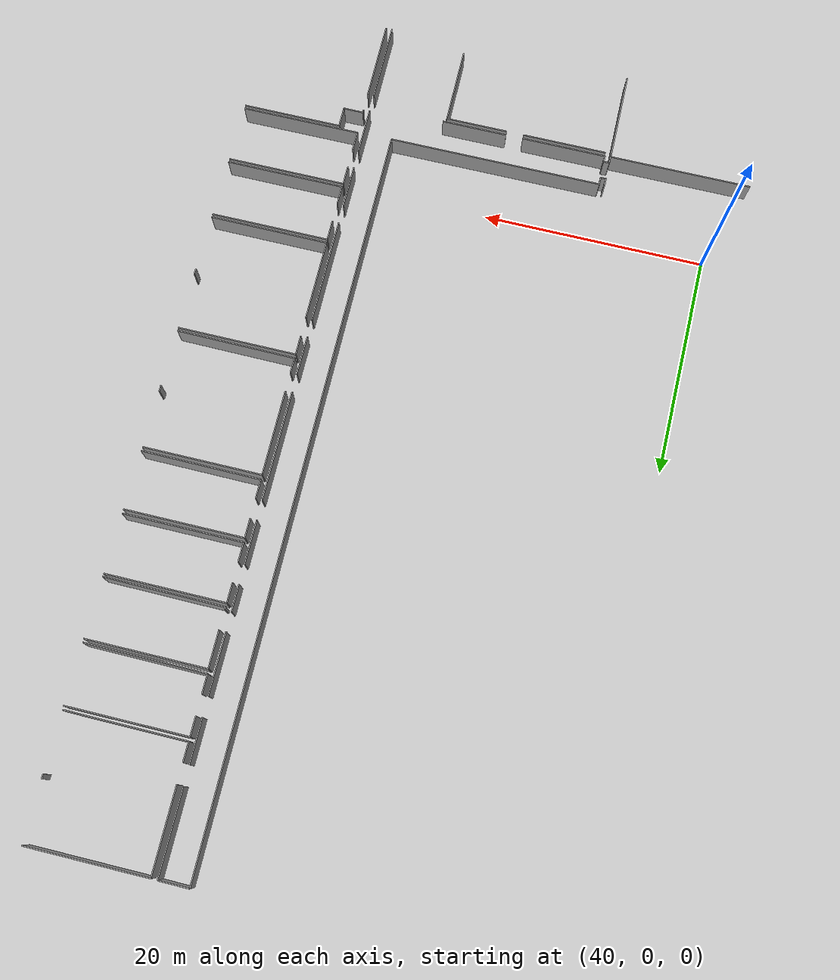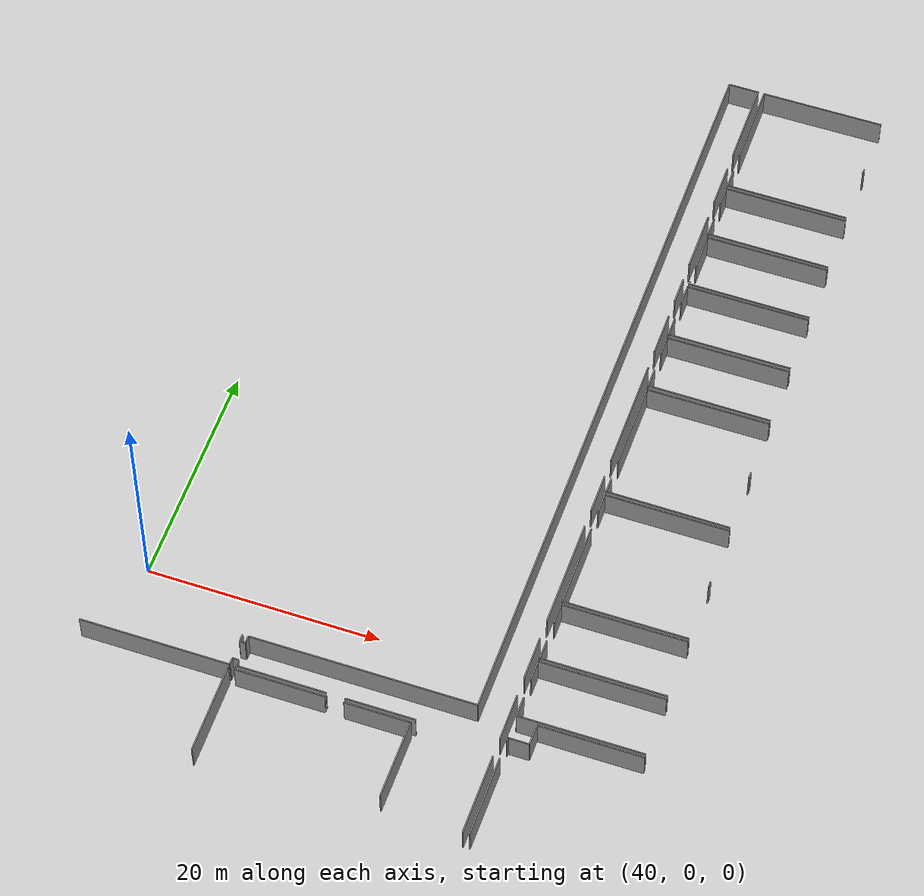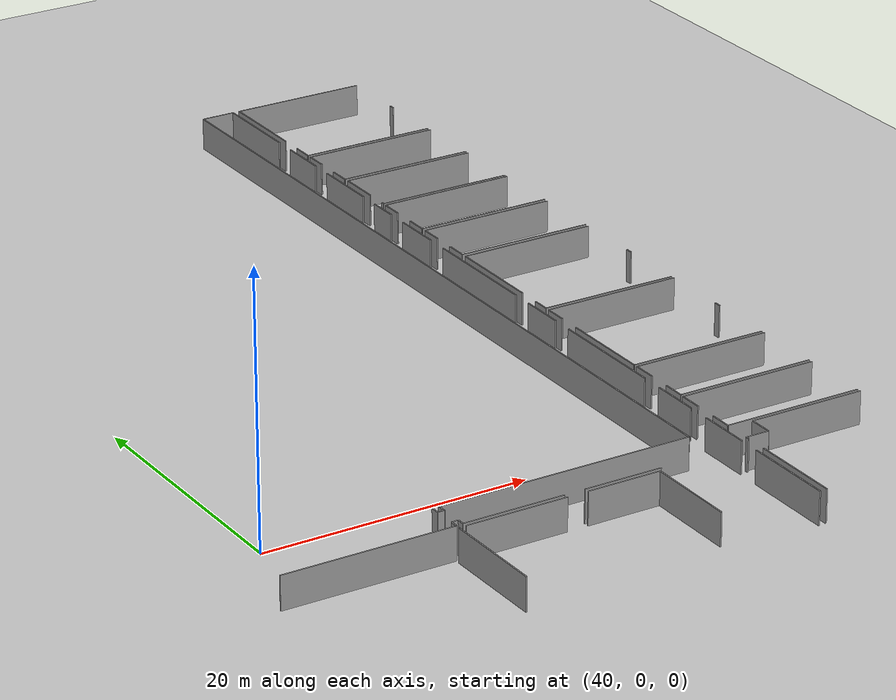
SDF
<sdf version="1.6">
 <world name="default">
  <model name="ground_plane">
   <static>1</static>
   <link name="link">
    <collision name="collision">
     <geometry><plane><normal>0 0 1</normal><size>100 100</size></plane></geometry>
     <surface><friction><ode><mu>100</mu><mu2>50</mu2></ode></friction></surface>
    </collision>
    <visual name="visual">
     <cast_shadows>0</cast_shadows>
     <geometry><plane><normal>0 0 1</normal><size>100 100</size></plane></geometry>
     <material>
      <script><uri>file://media/materials/scripts/gazebo.material</uri><name>Gazebo/Grey</name></script>
     </material>
    </visual>
   </link>
  </model>
  <model name="0510045905_A_40_1_103">
   <static>1</static>
   <link name="Wall_184">
    <collision name="Wall_184_Collision">
     <geometry><box><size>0.667246181862 0.1 2.5</size></box></geometry>
     <pose>0.333623090931 0 1.25 0 0 0</pose>
    </collision>
    <visual name="Wall_184_Visual">
     <pose>0.333623090931 0 1.25 0 0 0</pose>
     <geometry><box><size>0.667246181862 0.1 2.5</size></box></geometry>
     <material>
      <script><uri>file://media/materials/scripts/gazebo.material</uri><name>Gazebo/Grey</name></script>
      <ambient>1 1 1 1</ambient>
     </material>
    </visual>
    <pose>133.903034841 -66.9017721744 0 0 0 -1.57079632679</pose>
   </link>
   <link name="Wall_185">
    <collision name="Wall_185_Collision">
     <geometry><box><size>0.482731927692 0.1 2.5</size></box></geometry>
     <pose>0.241365963846 0 1.25 0 0 0</pose>
    </collision>
    <visual name="Wall_185_Visual">
     <pose>0.241365963846 0 1.25 0 0 0</pose>
     <geometry><box><size>0.482731927692 0.1 2.5</size></box></geometry>
     <material>
      <script><uri>file://media/materials/scripts/gazebo.material</uri><name>Gazebo/Grey</name></script>
      <ambient>1 1 1 1</ambient>
     </material>
    </visual>
    <pose>133.903034841 -67.5690183562 0 0 0 0.0</pose>
   </link>
   <link name="Wall_186">
    <collision name="Wall_186_Collision">
     <geometry><box><size>0.669276600065 0.1 2.5</size></box></geometry>
     <pose>0.334638300032 0 1.25 0 0 0</pose>
    </collision>
    <visual name="Wall_186_Visual">
     <pose>0.334638300032 0 1.25 0 0 0</pose>
     <geometry><box><size>0.669276600065 0.1 2.5</size></box></geometry>
     <material>
      <script><uri>file://media/materials/scripts/gazebo.material</uri><name>Gazebo/Grey</name></script>
      <ambient>1 1 1 1</ambient>
     </material>
    </visual>
    <pose>134.385766768 -67.5690183562 0 0 0 1.57079632679</pose>
   </link>
   <link name="Wall_187">
    <collision name="Wall_187_Collision">
     <geometry><box><size>19.3542001104 0.1 2.5</size></box></geometry>
     <pose>9.6771000552 0 1.25 0 0 0</pose>
    </collision>
    <visual name="Wall_187_Visual">
     <pose>9.6771000552 0 1.25 0 0 0</pose>
     <geometry><box><size>19.3542001104 0.1 2.5</size></box></geometry>
     <material>
      <script><uri>file://media/materials/scripts/gazebo.material</uri><name>Gazebo/Grey</name></script>
      <ambient>1 1 1 1</ambient>
     </material>
    </visual>
    <pose>134.385766768 -66.8997417562 0 0 0 0.0</pose>
   </link>
   <link name="Wall_188">
    <collision name="Wall_188_Collision">
     <geometry><box><size>66.8997417562 0.1 2.5</size></box></geometry>
     <pose>33.4498708781 0 1.25 0 0 0</pose>
    </collision>
    <visual name="Wall_188_Visual">
     <pose>33.4498708781 0 1.25 0 0 0</pose>
     <geometry><box><size>66.8997417562 0.1 2.5</size></box></geometry>
     <material>
      <script><uri>file://media/materials/scripts/gazebo.material</uri><name>Gazebo/Grey</name></script>
      <ambient>1 1 1 1</ambient>
     </material>
    </visual>
    <pose>153.739966879 -66.8997417562 0 0 0 1.57079632679</pose>
   </link>
   <link name="Wall_189">
    <collision name="Wall_189_Collision">
     <geometry><box><size>2.63497522255 0.1 2.5</size></box></geometry>
     <pose>1.31748761128 0 1.25 0 0 0</pose>
    </collision>
    <visual name="Wall_189_Visual">
     <pose>1.31748761128 0 1.25 0 0 0</pose>
     <geometry><box><size>2.63497522255 0.1 2.5</size></box></geometry>
     <material>
      <script><uri>file://media/materials/scripts/gazebo.material</uri><name>Gazebo/Grey</name></script>
      <ambient>1 1 1 1</ambient>
     </material>
    </visual>
    <pose>153.739966879 -0.0 0 0 0 0.0</pose>
   </link>
   <link name="Wall_190">
    <collision name="Wall_190_Collision">
     <geometry><box><size>7.36737244849 0.1 2.5</size></box></geometry>
     <pose>3.68368622425 0 1.25 0 0 0</pose>
    </collision>
    <visual name="Wall_190_Visual">
     <pose>3.68368622425 0 1.25 0 0 0</pose>
     <geometry><box><size>7.36737244849 0.1 2.5</size></box></geometry>
     <material>
      <script><uri>file://media/materials/scripts/gazebo.material</uri><name>Gazebo/Grey</name></script>
      <ambient>1 1 1 1</ambient>
     </material>
    </visual>
    <pose>156.374942101 -0.0 0 0 0 -1.57079632679</pose>
   </link>
   <link name="Wall_191">
    <collision name="Wall_191_Collision">
     <geometry><box><size>3.86210922381 0.1 2.5</size></box></geometry>
     <pose>1.9310546119 0 1.25 0 0 0</pose>
    </collision>
    <visual name="Wall_191_Visual">
     <pose>1.9310546119 0 1.25 0 0 0</pose>
     <geometry><box><size>3.86210922381 0.1 2.5</size></box></geometry>
     <material>
      <script><uri>file://media/materials/scripts/gazebo.material</uri><name>Gazebo/Grey</name></script>
      <ambient>1 1 1 1</ambient>
     </material>
    </visual>
    <pose>156.374942101 -9.08891328211 0 0 0 -1.57079632679</pose>
   </link>
   <link name="Wall_192">
    <collision name="Wall_192_Collision">
     <geometry><box><size>5.38949131679 0.1 2.5</size></box></geometry>
     <pose>2.69474565839 0 1.25 0 0 0</pose>
    </collision>
    <visual name="Wall_192_Visual">
     <pose>2.69474565839 0 1.25 0 0 0</pose>
     <geometry><box><size>5.38949131679 0.1 2.5</size></box></geometry>
     <material>
      <script><uri>file://media/materials/scripts/gazebo.material</uri><name>Gazebo/Grey</name></script>
      <ambient>1 1 1 1</ambient>
     </material>
    </visual>
    <pose>156.374942101 -14.6829692328 0 0 0 -1.57079632679</pose>
   </link>
   <link name="Wall_193">
    <collision name="Wall_193_Collision">
     <geometry><box><size>2.38701039955 0.1 2.5</size></box></geometry>
     <pose>1.19350519977 0 1.25 0 0 0</pose>
    </collision>
    <visual name="Wall_193_Visual">
     <pose>1.19350519977 0 1.25 0 0 0</pose>
     <geometry><box><size>2.38701039955 0.1 2.5</size></box></geometry>
     <material>
      <script><uri>file://media/materials/scripts/gazebo.material</uri><name>Gazebo/Grey</name></script>
      <ambient>1 1 1 1</ambient>
     </material>
    </visual>
    <pose>156.374942101 -21.736642069 0 0 0 -1.57079632679</pose>
   </link>
   <link name="Wall_194">
    <collision name="Wall_194_Collision">
     <geometry><box><size>3.91109306295 0.1 2.5</size></box></geometry>
     <pose>1.95554653147 0 1.25 0 0 0</pose>
    </collision>
    <visual name="Wall_194_Visual">
     <pose>1.95554653147 0 1.25 0 0 0</pose>
     <geometry><box><size>3.91109306295 0.1 2.5</size></box></geometry>
     <material>
      <script><uri>file://media/materials/scripts/gazebo.material</uri><name>Gazebo/Grey</name></script>
      <ambient>1 1 1 1</ambient>
     </material>
    </visual>
    <pose>156.374942101 -25.8403710589 0 0 0 -1.57079632679</pose>
   </link>
   <link name="Wall_195">
    <collision name="Wall_195_Collision">
     <geometry><box><size>9.9081870269 0.1 2.5</size></box></geometry>
     <pose>4.95409351345 0 1.25 0 0 0</pose>
    </collision>
    <visual name="Wall_195_Visual">
     <pose>4.95409351345 0 1.25 0 0 0</pose>
     <geometry><box><size>9.9081870269 0.1 2.5</size></box></geometry>
     <material>
      <script><uri>file://media/materials/scripts/gazebo.material</uri><name>Gazebo/Grey</name></script>
      <ambient>1 1 1 1</ambient>
     </material>
    </visual>
    <pose>156.374942101 -31.4755429782 0 0 0 -1.57079632679</pose>
   </link>
   <link name="Wall_196">
    <collision name="Wall_196_Collision">
     <geometry><box><size>3.54917101832 0.1 2.5</size></box></geometry>
     <pose>1.77458550916 0 1.25 0 0 0</pose>
    </collision>
    <visual name="Wall_196_Visual">
     <pose>1.77458550916 0 1.25 0 0 0</pose>
     <geometry><box><size>3.54917101832 0.1 2.5</size></box></geometry>
     <material>
      <script><uri>file://media/materials/scripts/gazebo.material</uri><name>Gazebo/Grey</name></script>
      <ambient>1 1 1 1</ambient>
     </material>
    </visual>
    <pose>156.374942101 -43.0293839584 0 0 0 -1.57079632679</pose>
   </link>
   <link name="Wall_197">
    <collision name="Wall_197_Collision">
     <geometry><box><size>9.56250832789 0.1 2.5</size></box></geometry>
     <pose>4.78125416394 0 1.25 0 0 0</pose>
    </collision>
    <visual name="Wall_197_Visual">
     <pose>4.78125416394 0 1.25 0 0 0</pose>
     <geometry><box><size>9.56250832789 0.1 2.5</size></box></geometry>
     <material>
      <script><uri>file://media/materials/scripts/gazebo.material</uri><name>Gazebo/Grey</name></script>
      <ambient>1 1 1 1</ambient>
     </material>
    </visual>
    <pose>156.374942101 -48.2122802231 0 0 0 -1.57079632679</pose>
   </link>
   <link name="Wall_198">
    <collision name="Wall_198_Collision">
     <geometry><box><size>3.85779458513 0.1 2.5</size></box></geometry>
     <pose>1.92889729256 0 1.25 0 0 0</pose>
    </collision>
    <visual name="Wall_198_Visual">
     <pose>1.92889729256 0 1.25 0 0 0</pose>
     <geometry><box><size>3.85779458513 0.1 2.5</size></box></geometry>
     <material>
      <script><uri>file://media/materials/scripts/gazebo.material</uri><name>Gazebo/Grey</name></script>
      <ambient>1 1 1 1</ambient>
     </material>
    </visual>
    <pose>156.374942101 -59.465365507 0 0 0 -1.57079632679</pose>
   </link>
   <link name="Wall_199">
    <collision name="Wall_199_Collision">
     <geometry><box><size>4.18875275217 0.1 2.5</size></box></geometry>
     <pose>2.09437637608 0 1.25 0 0 0</pose>
    </collision>
    <visual name="Wall_199_Visual">
     <pose>2.09437637608 0 1.25 0 0 0</pose>
     <geometry><box><size>4.18875275217 0.1 2.5</size></box></geometry>
     <material>
      <script><uri>file://media/materials/scripts/gazebo.material</uri><name>Gazebo/Grey</name></script>
      <ambient>1 1 1 1</ambient>
     </material>
    </visual>
    <pose>156.374942101 -65.0472389485 0 0 0 -1.57079632679</pose>
   </link>
   <link name="Wall_200">
    <collision name="Wall_200_Collision">
     <geometry><box><size>7.11230116178 0.1 2.5</size></box></geometry>
     <pose>3.55615058089 0 1.25 0 0 0</pose>
    </collision>
    <visual name="Wall_200_Visual">
     <pose>3.55615058089 0 1.25 0 0 0</pose>
     <geometry><box><size>7.11230116178 0.1 2.5</size></box></geometry>
     <material>
      <script><uri>file://media/materials/scripts/gazebo.material</uri><name>Gazebo/Grey</name></script>
      <ambient>1 1 1 1</ambient>
     </material>
    </visual>
    <pose>156.374942101 -70.8679403311 0 0 0 -1.57079632679</pose>
   </link>
   <link name="Wall_203">
    <collision name="Wall_203_Collision">
     <geometry><box><size>5.92501411775 0.1 2.5</size></box></geometry>
     <pose>2.96250705888 0 1.25 0 0 0</pose>
    </collision>
    <visual name="Wall_203_Visual">
     <pose>2.96250705888 0 1.25 0 0 0</pose>
     <geometry><box><size>5.92501411775 0.1 2.5</size></box></geometry>
     <material>
      <script><uri>file://media/materials/scripts/gazebo.material</uri><name>Gazebo/Grey</name></script>
      <ambient>1 1 1 1</ambient>
     </material>
    </visual>
    <pose>149.581416597 -69.7633928288 0 0 0 3.14159265359</pose>
   </link>
   <link name="Wall_204">
    <collision name="Wall_204_Collision">
     <geometry><box><size>7.66178308789 0.1 2.5</size></box></geometry>
     <pose>3.83089154394 0 1.25 0 0 0</pose>
    </collision>
    <visual name="Wall_204_Visual">
     <pose>3.83089154394 0 1.25 0 0 0</pose>
     <geometry><box><size>7.66178308789 0.1 2.5</size></box></geometry>
     <material>
      <script><uri>file://media/materials/scripts/gazebo.material</uri><name>Gazebo/Grey</name></script>
      <ambient>1 1 1 1</ambient>
     </material>
    </visual>
    <pose>142.094249475 -69.7633928288 0 0 0 3.14159265359</pose>
   </link>
   <link name="Wall_205">
    <collision name="Wall_205_Collision">
     <geometry><box><size>0.555826982989 0.1 2.5</size></box></geometry>
     <pose>0.277913491494 0 1.25 0 0 0</pose>
    </collision>
    <visual name="Wall_205_Visual">
     <pose>0.277913491494 0 1.25 0 0 0</pose>
     <geometry><box><size>0.555826982989 0.1 2.5</size></box></geometry>
     <material>
      <script><uri>file://media/materials/scripts/gazebo.material</uri><name>Gazebo/Grey</name></script>
      <ambient>1 1 1 1</ambient>
     </material>
    </visual>
    <pose>134.432466387 -69.7633928288 0 0 0 1.57079632679</pose>
   </link>
   <link name="Wall_206">
    <collision name="Wall_206_Collision">
     <geometry><box><size>0.50785835295 0.1 2.5</size></box></geometry>
     <pose>0.253929176475 0 1.25 0 0 0</pose>
    </collision>
    <visual name="Wall_206_Visual">
     <pose>0.253929176475 0 1.25 0 0 0</pose>
     <geometry><box><size>0.50785835295 0.1 2.5</size></box></geometry>
     <material>
      <script><uri>file://media/materials/scripts/gazebo.material</uri><name>Gazebo/Grey</name></script>
      <ambient>1 1 1 1</ambient>
     </material>
    </visual>
    <pose>134.432466387 -69.2075658458 0 0 0 3.14159265359</pose>
   </link>
   <link name="Wall_207">
    <collision name="Wall_207_Collision">
     <geometry><box><size>0.609379263085 0.1 2.5</size></box></geometry>
     <pose>0.304689631543 0 1.25 0 0 0</pose>
    </collision>
    <visual name="Wall_207_Visual">
     <pose>0.304689631543 0 1.25 0 0 0</pose>
     <geometry><box><size>0.609379263085 0.1 2.5</size></box></geometry>
     <material>
      <script><uri>file://media/materials/scripts/gazebo.material</uri><name>Gazebo/Grey</name></script>
      <ambient>1 1 1 1</ambient>
     </material>
    </visual>
    <pose>133.924608034 -69.2075658458 0 0 0 -1.57079632679</pose>
   </link>
   <link name="Wall_208">
    <collision name="Wall_208_Collision">
     <geometry><box><size>12.857115664 0.1 2.5</size></box></geometry>
     <pose>6.42855783202 0 1.25 0 0 0</pose>
    </collision>
    <visual name="Wall_208_Visual">
     <pose>6.42855783202 0 1.25 0 0 0</pose>
     <geometry><box><size>12.857115664 0.1 2.5</size></box></geometry>
     <material>
      <script><uri>file://media/materials/scripts/gazebo.material</uri><name>Gazebo/Grey</name></script>
      <ambient>1 1 1 1</ambient>
     </material>
    </visual>
    <pose>133.924608034 -69.8169451089 0 0 0 3.14159265359</pose>
   </link>
   <link name="Wall_288">
    <collision name="Wall_288_Collision">
     <geometry><box><size>7.88411336635 0.1 2.5</size></box></geometry>
     <pose>3.94205668318 0 1.25 0 0 0</pose>
    </collision>
    <visual name="Wall_288_Visual">
     <pose>3.94205668318 0 1.25 0 0 0</pose>
     <geometry><box><size>7.88411336635 0.1 2.5</size></box></geometry>
     <material>
      <script><uri>file://media/materials/scripts/gazebo.material</uri><name>Gazebo/Grey</name></script>
      <ambient>1 1 1 1</ambient>
     </material>
    </visual>
    <pose>133.907349479 -70.133182744 0 0 0 -1.56278053093</pose>
   </link>
   <link name="Wall_293">
    <collision name="Wall_293_Collision">
     <geometry><box><size>7.66051407651 0.1 2.5</size></box></geometry>
     <pose>3.83025703825 0 1.25 0 0 0</pose>
    </collision>
    <visual name="Wall_293_Visual">
     <pose>3.83025703825 0 1.25 0 0 0</pose>
     <geometry><box><size>7.66051407651 0.1 2.5</size></box></geometry>
     <material>
      <script><uri>file://media/materials/scripts/gazebo.material</uri><name>Gazebo/Grey</name></script>
      <ambient>1 1 1 1</ambient>
     </material>
    </visual>
    <pose>134.437542433 -70.1179546075 0 0 0 0.0</pose>
   </link>
   <link name="Wall_294">
    <collision name="Wall_294_Collision">
     <geometry><box><size>5.6014162167 0.1 2.5</size></box></geometry>
     <pose>2.80070810835 0 1.25 0 0 0</pose>
    </collision>
    <visual name="Wall_294_Visual">
     <pose>2.80070810835 0 1.25 0 0 0</pose>
     <geometry><box><size>5.6014162167 0.1 2.5</size></box></geometry>
     <material>
      <script><uri>file://media/materials/scripts/gazebo.material</uri><name>Gazebo/Grey</name></script>
      <ambient>1 1 1 1</ambient>
     </material>
    </visual>
    <pose>143.675945255 -70.1179546075 0 0 0 0.0</pose>
   </link>
   <link name="Wall_295">
    <collision name="Wall_295_Collision">
     <geometry><box><size>6.96915667849 0.1 2.5</size></box></geometry>
     <pose>3.48457833924 0 1.25 0 0 0</pose>
    </collision>
    <visual name="Wall_295_Visual">
     <pose>3.48457833924 0 1.25 0 0 0</pose>
     <geometry><box><size>6.96915667849 0.1 2.5</size></box></geometry>
     <material>
      <script><uri>file://media/materials/scripts/gazebo.material</uri><name>Gazebo/Grey</name></script>
      <ambient>1 1 1 1</ambient>
     </material>
    </visual>
    <pose>149.277361472 -70.1179546075 0 0 0 -1.57079632679</pose>
   </link>
   <link name="Wall_299">
    <collision name="Wall_299_Collision">
     <geometry><box><size>8.88993229824 0.1 2.5</size></box></geometry>
     <pose>4.44496614912 0 1.25 0 0 0</pose>
    </collision>
    <visual name="Wall_299_Visual">
     <pose>4.44496614912 0 1.25 0 0 0</pose>
     <geometry><box><size>8.88993229824 0.1 2.5</size></box></geometry>
     <material>
      <script><uri>file://media/materials/scripts/gazebo.material</uri><name>Gazebo/Grey</name></script>
      <ambient>1 1 1 1</ambient>
     </material>
    </visual>
    <pose>167.61406826 -67.1103976447 0 0 0 3.14159265359</pose>
   </link>
   <link name="Wall_300">
    <collision name="Wall_300_Collision">
     <geometry><box><size>1.8215389301 0.1 2.5</size></box></geometry>
     <pose>0.910769465048 0 1.25 0 0 0</pose>
    </collision>
    <visual name="Wall_300_Visual">
     <pose>0.910769465048 0 1.25 0 0 0</pose>
     <geometry><box><size>1.8215389301 0.1 2.5</size></box></geometry>
     <material>
      <script><uri>file://media/materials/scripts/gazebo.material</uri><name>Gazebo/Grey</name></script>
      <ambient>1 1 1 1</ambient>
     </material>
    </visual>
    <pose>158.724135962 -67.1103976447 0 0 0 -1.57079632679</pose>
   </link>
   <link name="Wall_301">
    <collision name="Wall_301_Collision">
     <geometry><box><size>1.78473760017 0.1 2.5</size></box></geometry>
     <pose>0.892368800086 0 1.25 0 0 0</pose>
    </collision>
    <visual name="Wall_301_Visual">
     <pose>0.892368800086 0 1.25 0 0 0</pose>
     <geometry><box><size>1.78473760017 0.1 2.5</size></box></geometry>
     <material>
      <script><uri>file://media/materials/scripts/gazebo.material</uri><name>Gazebo/Grey</name></script>
      <ambient>1 1 1 1</ambient>
     </material>
    </visual>
    <pose>158.724135962 -68.9319365748 0 0 0 3.14159265359</pose>
   </link>
   <link name="Wall_302">
    <collision name="Wall_302_Collision">
     <geometry><box><size>0.261162541322 0.1 2.5</size></box></geometry>
     <pose>0.130581270661 0 1.25 0 0 0</pose>
    </collision>
    <visual name="Wall_302_Visual">
     <pose>0.130581270661 0 1.25 0 0 0</pose>
     <geometry><box><size>0.261162541322 0.1 2.5</size></box></geometry>
     <material>
      <script><uri>file://media/materials/scripts/gazebo.material</uri><name>Gazebo/Grey</name></script>
      <ambient>1 1 1 1</ambient>
     </material>
    </visual>
    <pose>156.939398362 -68.9319365748 0 0 0 -1.57079632679</pose>
   </link>
   <link name="Wall_303">
    <collision name="Wall_303_Collision">
     <geometry><box><size>7.08463671377 0.1 2.5</size></box></geometry>
     <pose>3.54231835688 0 1.25 0 0 0</pose>
    </collision>
    <visual name="Wall_303_Visual">
     <pose>3.54231835688 0 1.25 0 0 0</pose>
     <geometry><box><size>7.08463671377 0.1 2.5</size></box></geometry>
     <material>
      <script><uri>file://media/materials/scripts/gazebo.material</uri><name>Gazebo/Grey</name></script>
      <ambient>1 1 1 1</ambient>
     </material>
    </visual>
    <pose>156.939398362 -70.8763158062 0 0 0 -1.57079632679</pose>
   </link>
   <link name="Wall_305">
    <collision name="Wall_305_Collision">
     <geometry><box><size>10.6802535485 0.1 2.5</size></box></geometry>
     <pose>5.34012677424 0 1.25 0 0 0</pose>
    </collision>
    <visual name="Wall_305_Visual">
     <pose>5.34012677424 0 1.25 0 0 0</pose>
     <geometry><box><size>10.6802535485 0.1 2.5</size></box></geometry>
     <material>
      <script><uri>file://media/materials/scripts/gazebo.material</uri><name>Gazebo/Grey</name></script>
      <ambient>1 1 1 1</ambient>
     </material>
    </visual>
    <pose>167.604931378 -61.5455289557 0 0 0 3.14159265359</pose>
   </link>
   <link name="Wall_306">
    <collision name="Wall_306_Collision">
     <geometry><box><size>1.77052467275 0.1 2.5</size></box></geometry>
     <pose>0.885262336377 0 1.25 0 0 0</pose>
    </collision>
    <visual name="Wall_306_Visual">
     <pose>0.885262336377 0 1.25 0 0 0</pose>
     <geometry><box><size>1.77052467275 0.1 2.5</size></box></geometry>
     <material>
      <script><uri>file://media/materials/scripts/gazebo.material</uri><name>Gazebo/Grey</name></script>
      <ambient>1 1 1 1</ambient>
     </material>
    </visual>
    <pose>156.92467783 -61.5455289557 0 0 0 -1.57079632679</pose>
   </link>
   <link name="Wall_307">
    <collision name="Wall_307_Collision">
     <geometry><box><size>1.72864729732 0.1 2.5</size></box></geometry>
     <pose>0.864323648662 0 1.25 0 0 0</pose>
    </collision>
    <visual name="Wall_307_Visual">
     <pose>0.864323648662 0 1.25 0 0 0</pose>
     <geometry><box><size>1.72864729732 0.1 2.5</size></box></geometry>
     <material>
      <script><uri>file://media/materials/scripts/gazebo.material</uri><name>Gazebo/Grey</name></script>
      <ambient>1 1 1 1</ambient>
     </material>
    </visual>
    <pose>156.92467783 -65.0959689854 0 0 0 -1.57079632679</pose>
   </link>
   <link name="Wall_308">
    <collision name="Wall_308_Collision">
     <geometry><box><size>10.6802596551 0.1 2.5</size></box></geometry>
     <pose>5.34012982757 0 1.25 0 0 0</pose>
    </collision>
    <visual name="Wall_308_Visual">
     <pose>5.34012982757 0 1.25 0 0 0</pose>
     <geometry><box><size>10.6802596551 0.1 2.5</size></box></geometry>
     <material>
      <script><uri>file://media/materials/scripts/gazebo.material</uri><name>Gazebo/Grey</name></script>
      <ambient>1 1 1 1</ambient>
     </material>
    </visual>
    <pose>156.92467783 -66.8246162827 0 0 0 0.00106936581466</pose>
   </link>
   <link name="Wall_309">
    <collision name="Wall_309_Collision">
     <geometry><box><size>10.6467516481 0.1 2.5</size></box></geometry>
     <pose>5.32337582406 0 1.25 0 0 0</pose>
    </collision>
    <visual name="Wall_309_Visual">
     <pose>5.32337582406 0 1.25 0 0 0</pose>
     <geometry><box><size>10.6467516481 0.1 2.5</size></box></geometry>
     <material>
      <script><uri>file://media/materials/scripts/gazebo.material</uri><name>Gazebo/Grey</name></script>
      <ambient>1 1 1 1</ambient>
     </material>
    </visual>
    <pose>167.610007424 -55.9189863137 0 0 0 3.14159265359</pose>
   </link>
   <link name="Wall_310">
    <collision name="Wall_310_Collision">
     <geometry><box><size>1.81900090734 0.1 2.5</size></box></geometry>
     <pose>0.909500453672 0 1.25 0 0 0</pose>
    </collision>
    <visual name="Wall_310_Visual">
     <pose>0.909500453672 0 1.25 0 0 0</pose>
     <geometry><box><size>1.81900090734 0.1 2.5</size></box></geometry>
     <material>
      <script><uri>file://media/materials/scripts/gazebo.material</uri><name>Gazebo/Grey</name></script>
      <ambient>1 1 1 1</ambient>
     </material>
    </visual>
    <pose>156.963255776 -55.9189863137 0 0 0 -1.57079632679</pose>
   </link>
   <link name="Wall_311">
    <collision name="Wall_311_Collision">
     <geometry><box><size>1.74133741109 0.1 2.5</size></box></geometry>
     <pose>0.870668705545 0 1.25 0 0 0</pose>
    </collision>
    <visual name="Wall_311_Visual">
     <pose>0.870668705545 0 1.25 0 0 0</pose>
     <geometry><box><size>1.74133741109 0.1 2.5</size></box></geometry>
     <material>
      <script><uri>file://media/materials/scripts/gazebo.material</uri><name>Gazebo/Grey</name></script>
      <ambient>1 1 1 1</ambient>
     </material>
    </visual>
    <pose>156.963255776 -59.4932837573 0 0 0 -1.57079632679</pose>
   </link>
   <link name="Wall_312">
    <collision name="Wall_312_Collision">
     <geometry><box><size>10.6467543707 0.1 2.5</size></box></geometry>
     <pose>5.32337718537 0 1.25 0 0 0</pose>
    </collision>
    <visual name="Wall_312_Visual">
     <pose>5.32337718537 0 1.25 0 0 0</pose>
     <geometry><box><size>10.6467543707 0.1 2.5</size></box></geometry>
     <material>
      <script><uri>file://media/materials/scripts/gazebo.material</uri><name>Gazebo/Grey</name></script>
      <ambient>1 1 1 1</ambient>
     </material>
    </visual>
    <pose>156.963255776 -61.2346211684 0 0 0 -0.000715153993791</pose>
   </link>
   <link name="Wall_313">
    <collision name="Wall_313_Collision">
     <geometry><box><size>0.529939150904 0.1 2.5</size></box></geometry>
     <pose>0.264969575452 0 1.25 0 0 0</pose>
    </collision>
    <visual name="Wall_313_Visual">
     <pose>0.264969575452 0 1.25 0 0 0</pose>
     <geometry><box><size>0.529939150904 0.1 2.5</size></box></geometry>
     <material>
      <script><uri>file://media/materials/scripts/gazebo.material</uri><name>Gazebo/Grey</name></script>
      <ambient>1 1 1 1</ambient>
     </material>
    </visual>
    <pose>167.611276435 -50.4835567851 0 0 0 1.57079632679</pose>
   </link>
   <link name="Wall_314">
    <collision name="Wall_314_Collision">
     <geometry><box><size>10.6624873892 0.1 2.5</size></box></geometry>
     <pose>5.3312436946 0 1.25 0 0 0</pose>
    </collision>
    <visual name="Wall_314_Visual">
     <pose>5.3312436946 0 1.25 0 0 0</pose>
     <geometry><box><size>10.6624873892 0.1 2.5</size></box></geometry>
     <material>
      <script><uri>file://media/materials/scripts/gazebo.material</uri><name>Gazebo/Grey</name></script>
      <ambient>1 1 1 1</ambient>
     </material>
    </visual>
    <pose>167.611276435 -44.7674219399 0 0 0 3.14159265359</pose>
   </link>
   <link name="Wall_315">
    <collision name="Wall_315_Collision">
     <geometry><box><size>1.74133741109 0.1 2.5</size></box></geometry>
     <pose>0.870668705545 0 1.25 0 0 0</pose>
    </collision>
    <visual name="Wall_315_Visual">
     <pose>0.870668705545 0 1.25 0 0 0</pose>
     <geometry><box><size>1.74133741109 0.1 2.5</size></box></geometry>
     <material>
      <script><uri>file://media/materials/scripts/gazebo.material</uri><name>Gazebo/Grey</name></script>
      <ambient>1 1 1 1</ambient>
     </material>
    </visual>
    <pose>156.948789046 -44.7674219399 0 0 0 -1.57079632679</pose>
   </link>
   <link name="Wall_316">
    <collision name="Wall_316_Collision">
     <geometry><box><size>7.31940381846 0.1 2.5</size></box></geometry>
     <pose>3.65970190923 0 1.25 0 0 0</pose>
    </collision>
    <visual name="Wall_316_Visual">
     <pose>3.65970190923 0 1.25 0 0 0</pose>
     <geometry><box><size>7.31940381846 0.1 2.5</size></box></geometry>
     <material>
      <script><uri>file://media/materials/scripts/gazebo.material</uri><name>Gazebo/Grey</name></script>
      <ambient>1 1 1 1</ambient>
     </material>
    </visual>
    <pose>156.948789046 -48.2874056966 0 0 0 -1.57079632679</pose>
   </link>
   <link name="Wall_317">
    <collision name="Wall_317_Collision">
     <geometry><box><size>10.6625169947 0.1 2.5</size></box></geometry>
     <pose>5.33125849735 0 1.25 0 0 0</pose>
    </collision>
    <visual name="Wall_317_Visual">
     <pose>5.33125849735 0 1.25 0 0 0</pose>
     <geometry><box><size>10.6625169947 0.1 2.5</size></box></geometry>
     <material>
      <script><uri>file://media/materials/scripts/gazebo.material</uri><name>Gazebo/Grey</name></script>
      <ambient>1 1 1 1</ambient>
     </material>
    </visual>
    <pose>156.948789046 -55.606809515 0 0 0 -0.00235652130976</pose>
   </link>
   <link name="Wall_318">
    <collision name="Wall_318_Collision">
     <geometry><box><size>0.550750937482 0.1 2.5</size></box></geometry>
     <pose>0.275375468741 0 1.25 0 0 0</pose>
    </collision>
    <visual name="Wall_318_Visual">
     <pose>0.275375468741 0 1.25 0 0 0</pose>
     <geometry><box><size>0.550750937482 0.1 2.5</size></box></geometry>
     <material>
      <script><uri>file://media/materials/scripts/gazebo.material</uri><name>Gazebo/Grey</name></script>
      <ambient>1 1 1 1</ambient>
     </material>
    </visual>
    <pose>167.576759326 -39.2977291041 0 0 0 1.57079632679</pose>
   </link>
   <link name="Wall_319">
    <collision name="Wall_319_Collision">
     <geometry><box><size>10.6135035501 0.1 2.5</size></box></geometry>
     <pose>5.30675177503 0 1.25 0 0 0</pose>
    </collision>
    <visual name="Wall_319_Visual">
     <pose>5.30675177503 0 1.25 0 0 0</pose>
     <geometry><box><size>10.6135035501 0.1 2.5</size></box></geometry>
     <material>
      <script><uri>file://media/materials/scripts/gazebo.material</uri><name>Gazebo/Grey</name></script>
      <ambient>1 1 1 1</ambient>
     </material>
    </visual>
    <pose>167.576759326 -33.623979239 0 0 0 3.14159265359</pose>
   </link>
   <link name="Wall_320">
    <collision name="Wall_320_Collision">
     <geometry><box><size>7.68614810632 0.1 2.5</size></box></geometry>
     <pose>3.84307405316 0 1.25 0 0 0</pose>
    </collision>
    <visual name="Wall_320_Visual">
     <pose>3.84307405316 0 1.25 0 0 0</pose>
     <geometry><box><size>7.68614810632 0.1 2.5</size></box></geometry>
     <material>
      <script><uri>file://media/materials/scripts/gazebo.material</uri><name>Gazebo/Grey</name></script>
      <ambient>1 1 1 1</ambient>
     </material>
    </visual>
    <pose>156.963255776 -33.623979239 0 0 0 -1.57079632679</pose>
   </link>
   <link name="Wall_321">
    <collision name="Wall_321_Collision">
     <geometry><box><size>1.38804464382 0.1 2.5</size></box></geometry>
     <pose>0.69402232191 0 1.25 0 0 0</pose>
    </collision>
    <visual name="Wall_321_Visual">
     <pose>0.69402232191 0 1.25 0 0 0</pose>
     <geometry><box><size>1.38804464382 0.1 2.5</size></box></geometry>
     <material>
      <script><uri>file://media/materials/scripts/gazebo.material</uri><name>Gazebo/Grey</name></script>
      <ambient>1 1 1 1</ambient>
     </material>
    </visual>
    <pose>156.963255776 -43.0260845288 0 0 0 -1.57079632679</pose>
   </link>
   <link name="Wall_322">
    <collision name="Wall_322_Collision">
     <geometry><box><size>10.6137587573 0.1 2.5</size></box></geometry>
     <pose>5.30687937866 0 1.25 0 0 0</pose>
    </collision>
    <visual name="Wall_322_Visual">
     <pose>5.30687937866 0 1.25 0 0 0</pose>
     <geometry><box><size>10.6137587573 0.1 2.5</size></box></geometry>
     <material>
      <script><uri>file://media/materials/scripts/gazebo.material</uri><name>Gazebo/Grey</name></script>
      <ambient>1 1 1 1</ambient>
     </material>
    </visual>
    <pose>156.963255776 -44.4141291727 0 0 0 -0.00693470159445</pose>
   </link>
   <link name="Wall_323">
    <collision name="Wall_323_Collision">
     <geometry><box><size>10.6340615344 0.1 2.5</size></box></geometry>
     <pose>5.31703076718 0 1.25 0 0 0</pose>
    </collision>
    <visual name="Wall_323_Visual">
     <pose>5.31703076718 0 1.25 0 0 0</pose>
     <geometry><box><size>10.6340615344 0.1 2.5</size></box></geometry>
     <material>
      <script><uri>file://media/materials/scripts/gazebo.material</uri><name>Gazebo/Grey</name></script>
      <ambient>1 1 1 1</ambient>
     </material>
    </visual>
    <pose>167.590464649 -28.0101267108 0 0 0 3.14159265359</pose>
   </link>
   <link name="Wall_324">
    <collision name="Wall_324_Collision">
     <geometry><box><size>1.7474286657 0.1 2.5</size></box></geometry>
     <pose>0.873714332849 0 1.25 0 0 0</pose>
    </collision>
    <visual name="Wall_324_Visual">
     <pose>0.873714332849 0 1.25 0 0 0</pose>
     <geometry><box><size>1.7474286657 0.1 2.5</size></box></geometry>
     <material>
      <script><uri>file://media/materials/scripts/gazebo.material</uri><name>Gazebo/Grey</name></script>
      <ambient>1 1 1 1</ambient>
     </material>
    </visual>
    <pose>156.956403114 -28.0101267108 0 0 0 -1.57079632679</pose>
   </link>
   <link name="Wall_325">
    <collision name="Wall_325_Collision">
     <geometry><box><size>1.71164254488 0.1 2.5</size></box></geometry>
     <pose>0.855821272438 0 1.25 0 0 0</pose>
    </collision>
    <visual name="Wall_325_Visual">
     <pose>0.855821272438 0 1.25 0 0 0</pose>
     <geometry><box><size>1.71164254488 0.1 2.5</size></box></geometry>
     <material>
      <script><uri>file://media/materials/scripts/gazebo.material</uri><name>Gazebo/Grey</name></script>
      <ambient>1 1 1 1</ambient>
     </material>
    </visual>
    <pose>156.956403114 -31.5021922172 0 0 0 -1.57079632679</pose>
   </link>
   <link name="Wall_326">
    <collision name="Wall_326_Collision">
     <geometry><box><size>10.6342538697 0.1 2.5</size></box></geometry>
     <pose>5.31712693483 0 1.25 0 0 0</pose>
    </collision>
    <visual name="Wall_326_Visual">
     <pose>5.31712693483 0 1.25 0 0 0</pose>
     <geometry><box><size>10.6342538697 0.1 2.5</size></box></geometry>
     <material>
      <script><uri>file://media/materials/scripts/gazebo.material</uri><name>Gazebo/Grey</name></script>
      <ambient>1 1 1 1</ambient>
     </material>
    </visual>
    <pose>156.956403114 -33.213834762 0 0 0 -0.00601439083198</pose>
   </link>
   <link name="Wall_327">
    <collision name="Wall_327_Collision">
     <geometry><box><size>10.6652792142 0.1 2.5</size></box></geometry>
     <pose>5.33263960711 0 1.25 0 0 0</pose>
    </collision>
    <visual name="Wall_327_Visual">
     <pose>5.33263960711 0 1.25 0 0 0</pose>
     <geometry><box><size>10.6652792142 0.1 2.5</size></box></geometry>
     <material>
      <script><uri>file://media/materials/scripts/gazebo.material</uri><name>Gazebo/Grey</name></script>
      <ambient>1 1 1 1</ambient>
     </material>
    </visual>
    <pose>167.610768831 -22.3620108754 0 0 0 3.14159265359</pose>
   </link>
   <link name="Wall_328">
    <collision name="Wall_328_Collision">
     <geometry><box><size>1.7885446343 0.1 2.5</size></box></geometry>
     <pose>0.894272317151 0 1.25 0 0 0</pose>
    </collision>
    <visual name="Wall_328_Visual">
     <pose>0.894272317151 0 1.25 0 0 0</pose>
     <geometry><box><size>1.7885446343 0.1 2.5</size></box></geometry>
     <material>
      <script><uri>file://media/materials/scripts/gazebo.material</uri><name>Gazebo/Grey</name></script>
      <ambient>1 1 1 1</ambient>
     </material>
    </visual>
    <pose>156.945489616 -22.3620108754 0 0 0 -1.57079632679</pose>
   </link>
   <link name="Wall_329">
    <collision name="Wall_329_Collision">
     <geometry><box><size>1.74133741109 0.1 2.5</size></box></geometry>
     <pose>0.870668705545 0 1.25 0 0 0</pose>
    </collision>
    <visual name="Wall_329_Visual">
     <pose>0.870668705545 0 1.25 0 0 0</pose>
     <geometry><box><size>1.74133741109 0.1 2.5</size></box></geometry>
     <material>
      <script><uri>file://media/materials/scripts/gazebo.material</uri><name>Gazebo/Grey</name></script>
      <ambient>1 1 1 1</ambient>
     </material>
    </visual>
    <pose>156.945489616 -25.8916391185 0 0 0 -1.57079632679</pose>
   </link>
   <link name="Wall_330">
    <collision name="Wall_330_Collision">
     <geometry><box><size>10.6652940116 0.1 2.5</size></box></geometry>
     <pose>5.3326470058 0 1.25 0 0 0</pose>
    </collision>
    <visual name="Wall_330_Visual">
     <pose>5.3326470058 0 1.25 0 0 0</pose>
     <geometry><box><size>10.6652940116 0.1 2.5</size></box></geometry>
     <material>
      <script><uri>file://media/materials/scripts/gazebo.material</uri><name>Gazebo/Grey</name></script>
      <ambient>1 1 1 1</ambient>
     </material>
    </visual>
    <pose>156.945489616 -27.6329765296 0 0 0 -0.00166579256706</pose>
   </link>
   <link name="Wall_331">
    <collision name="Wall_331_Collision">
     <geometry><box><size>10.6368533594 0.1 2.5</size></box></geometry>
     <pose>5.3184266797 0 1.25 0 0 0</pose>
    </collision>
    <visual name="Wall_331_Visual">
     <pose>5.3184266797 0 1.25 0 0 0</pose>
     <geometry><box><size>10.6368533594 0.1 2.5</size></box></geometry>
     <material>
      <script><uri>file://media/materials/scripts/gazebo.material</uri><name>Gazebo/Grey</name></script>
      <ambient>1 1 1 1</ambient>
     </material>
    </visual>
    <pose>167.610007424 -16.791304734 0 0 0 3.14159265359</pose>
   </link>
   <link name="Wall_332">
    <collision name="Wall_332_Collision">
     <geometry><box><size>3.28851608155 0.1 2.5</size></box></geometry>
     <pose>1.64425804077 0 1.25 0 0 0</pose>
    </collision>
    <visual name="Wall_332_Visual">
     <pose>1.64425804077 0 1.25 0 0 0</pose>
     <geometry><box><size>3.28851608155 0.1 2.5</size></box></geometry>
     <material>
      <script><uri>file://media/materials/scripts/gazebo.material</uri><name>Gazebo/Grey</name></script>
      <ambient>1 1 1 1</ambient>
     </material>
    </visual>
    <pose>156.973154064 -16.791304734 0 0 0 -1.57079632679</pose>
   </link>
   <link name="Wall_333">
    <collision name="Wall_333_Collision">
     <geometry><box><size>0.219538968167 0.1 2.5</size></box></geometry>
     <pose>0.109769484083 0 1.25 0 0 0</pose>
    </collision>
    <visual name="Wall_333_Visual">
     <pose>0.109769484083 0 1.25 0 0 0</pose>
     <geometry><box><size>0.219538968167 0.1 2.5</size></box></geometry>
     <material>
      <script><uri>file://media/materials/scripts/gazebo.material</uri><name>Gazebo/Grey</name></script>
      <ambient>1 1 1 1</ambient>
     </material>
    </visual>
    <pose>156.973154064 -21.8099909266 0 0 0 -1.57079632679</pose>
   </link>
   <link name="Wall_334">
    <collision name="Wall_334_Collision">
     <geometry><box><size>10.6370395884 0.1 2.5</size></box></geometry>
     <pose>5.31851979422 0 1.25 0 0 0</pose>
    </collision>
    <visual name="Wall_334_Visual">
     <pose>5.31851979422 0 1.25 0 0 0</pose>
     <geometry><box><size>10.6370395884 0.1 2.5</size></box></geometry>
     <material>
      <script><uri>file://media/materials/scripts/gazebo.material</uri><name>Gazebo/Grey</name></script>
      <ambient>1 1 1 1</ambient>
     </material>
    </visual>
    <pose>156.973154064 -22.0295298947 0 0 0 -0.00591737307074</pose>
   </link>
   <link name="Wall_335">
    <collision name="Wall_335_Collision">
     <geometry><box><size>10.6878676167 0.1 2.5</size></box></geometry>
     <pose>5.34393380837 0 1.25 0 0 0</pose>
    </collision>
    <visual name="Wall_335_Visual">
     <pose>5.34393380837 0 1.25 0 0 0</pose>
     <geometry><box><size>10.6878676167 0.1 2.5</size></box></geometry>
     <material>
      <script><uri>file://media/materials/scripts/gazebo.material</uri><name>Gazebo/Grey</name></script>
      <ambient>1 1 1 1</ambient>
     </material>
    </visual>
    <pose>167.611276435 -11.2023248288 0 0 0 3.14159265359</pose>
   </link>
   <link name="Wall_336">
    <collision name="Wall_336_Collision">
     <geometry><box><size>1.7289010996 0.1 2.5</size></box></geometry>
     <pose>0.864450549799 0 1.25 0 0 0</pose>
    </collision>
    <visual name="Wall_336_Visual">
     <pose>0.864450549799 0 1.25 0 0 0</pose>
     <geometry><box><size>1.7289010996 0.1 2.5</size></box></geometry>
     <material>
      <script><uri>file://media/materials/scripts/gazebo.material</uri><name>Gazebo/Grey</name></script>
      <ambient>1 1 1 1</ambient>
     </material>
    </visual>
    <pose>156.923408818 -11.2023248288 0 0 0 -1.57079632679</pose>
   </link>
   <link name="Wall_337">
    <collision name="Wall_337_Collision">
     <geometry><box><size>1.69819102428 0.1 2.5</size></box></geometry>
     <pose>0.849095512141 0 1.25 0 0 0</pose>
    </collision>
    <visual name="Wall_337_Visual">
     <pose>0.849095512141 0 1.25 0 0 0</pose>
     <geometry><box><size>1.69819102428 0.1 2.5</size></box></geometry>
     <material>
      <script><uri>file://media/materials/scripts/gazebo.material</uri><name>Gazebo/Grey</name></script>
      <ambient>1 1 1 1</ambient>
     </material>
    </visual>
    <pose>156.923408818 -14.7113950877 0 0 0 -1.57079632679</pose>
   </link>
   <link name="Wall_338">
    <collision name="Wall_338_Collision">
     <geometry><box><size>10.6880792371 0.1 2.5</size></box></geometry>
     <pose>5.34403961854 0 1.25 0 0 0</pose>
    </collision>
    <visual name="Wall_338_Visual">
     <pose>5.34403961854 0 1.25 0 0 0</pose>
     <geometry><box><size>10.6880792371 0.1 2.5</size></box></geometry>
     <material>
      <script><uri>file://media/materials/scripts/gazebo.material</uri><name>Gazebo/Grey</name></script>
      <ambient>1 1 1 1</ambient>
     </material>
    </visual>
    <pose>156.923408818 -16.4095861119 0 0 0 -0.00629280952813</pose>
   </link>
   <link name="Wall_339">
    <collision name="Wall_339_Collision">
     <geometry><box><size>0.420804172509 0.1 2.5</size></box></geometry>
     <pose>0.210402086255 0 1.25 0 0 0</pose>
    </collision>
    <visual name="Wall_339_Visual">
     <pose>0.210402086255 0 1.25 0 0 0</pose>
     <geometry><box><size>0.420804172509 0.1 2.5</size></box></geometry>
     <material>
      <script><uri>file://media/materials/scripts/gazebo.material</uri><name>Gazebo/Grey</name></script>
      <ambient>1 1 1 1</ambient>
     </material>
    </visual>
    <pose>167.575997919 -5.69202362899 0 0 0 1.57079632679</pose>
   </link>
   <link name="Wall_340">
    <collision name="Wall_340_Collision">
     <geometry><box><size>10.6513200891 0.1 2.5</size></box></geometry>
     <pose>5.32566004454 0 1.25 0 0 0</pose>
    </collision>
    <visual name="Wall_340_Visual">
     <pose>5.32566004454 0 1.25 0 0 0</pose>
     <geometry><box><size>10.6513200891 0.1 2.5</size></box></geometry>
     <material>
      <script><uri>file://media/materials/scripts/gazebo.material</uri><name>Gazebo/Grey</name></script>
      <ambient>1 1 1 1</ambient>
     </material>
    </visual>
    <pose>167.575997919 -0.018019961549 0 0 0 3.14159265359</pose>
   </link>
   <link name="Wall_341">
    <collision name="Wall_341_Collision">
     <geometry><box><size>7.35722035748 0.1 2.5</size></box></geometry>
     <pose>3.67861017874 0 1.25 0 0 0</pose>
    </collision>
    <visual name="Wall_341_Visual">
     <pose>3.67861017874 0 1.25 0 0 0</pose>
     <geometry><box><size>7.35722035748 0.1 2.5</size></box></geometry>
     <material>
      <script><uri>file://media/materials/scripts/gazebo.material</uri><name>Gazebo/Grey</name></script>
      <ambient>1 1 1 1</ambient>
     </material>
    </visual>
    <pose>156.92467783 -0.018019961549 0 0 0 -1.57079632679</pose>
   </link>
   <link name="Wall_342">
    <collision name="Wall_342_Collision">
     <geometry><box><size>1.71621098583 0.1 2.5</size></box></geometry>
     <pose>0.858105492916 0 1.25 0 0 0</pose>
    </collision>
    <visual name="Wall_342_Visual">
     <pose>0.858105492916 0 1.25 0 0 0</pose>
     <geometry><box><size>1.71621098583 0.1 2.5</size></box></geometry>
     <material>
      <script><uri>file://media/materials/scripts/gazebo.material</uri><name>Gazebo/Grey</name></script>
      <ambient>1 1 1 1</ambient>
     </material>
    </visual>
    <pose>156.92467783 -9.12038476425 0 0 0 -1.57079632679</pose>
   </link>
   <link name="Wall_343">
    <collision name="Wall_343_Collision">
     <geometry><box><size>10.6513802057 0.1 2.5</size></box></geometry>
     <pose>5.32569010285 0 1.25 0 0 0</pose>
    </collision>
    <visual name="Wall_343_Visual">
     <pose>5.32569010285 0 1.25 0 0 0</pose>
     <geometry><box><size>10.6513802057 0.1 2.5</size></box></geometry>
     <material>
      <script><uri>file://media/materials/scripts/gazebo.material</uri><name>Gazebo/Grey</name></script>
      <ambient>1 1 1 1</ambient>
     </material>
    </visual>
    <pose>156.92467783 -10.8365957501 0 0 0 -0.00335977004458</pose>
   </link>
   <pose>-83.8 62.4001624335 0 0 0 0</pose>
  </model>
 </world>
</sdf>
